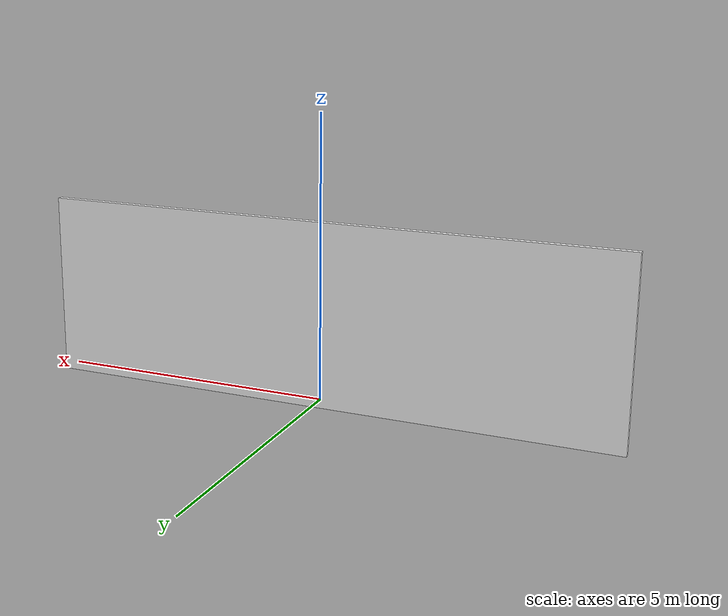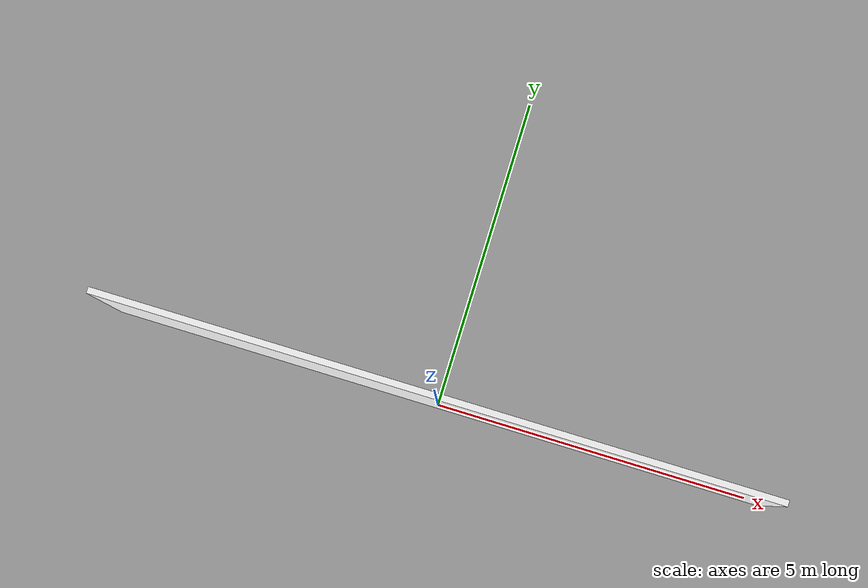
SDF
<?xml version="1.0" ?>
<sdf version="1.6">
  <model name="pool_wall">
    <!-- weight -->
    <link name="pool_wall_link">
      <pose>0.0 0 1.515 0.0 0.0 0.0</pose>
      <collision name="wall_collision">
          <geometry>
            <box>
                <size>10.5 0.1 3.3</size>
            </box>
          </geometry>
      </collision>
      <visual name="pool_wall_visual">
        <geometry>
            <box>
                <size>10.5 0.1 3.3</size>
            </box>
        </geometry>
        <material>
          <diffuse>1.0 1.0 1.0</diffuse>
          <specular>1.0 1.0 1.0</specular>
          <pbr>
            <metal>
              <albedo_map>material/pool_wall.png</albedo_map>
              <normal_map>material/pool_wall.png</normal_map>
              <metalness_map>material/pool_wall.png</metalness_map>
              <roughness_map>material/pool_wall.png</roughness_map>
            </metal>
          </pbr>
          <script>
            <uri>material/</uri>
            <name>PoolWallMaterial</name>
            <scale>1.0 0.1</scale>
          </script>
        </material>
      </visual>
    </link>
  </model>
</sdf>
